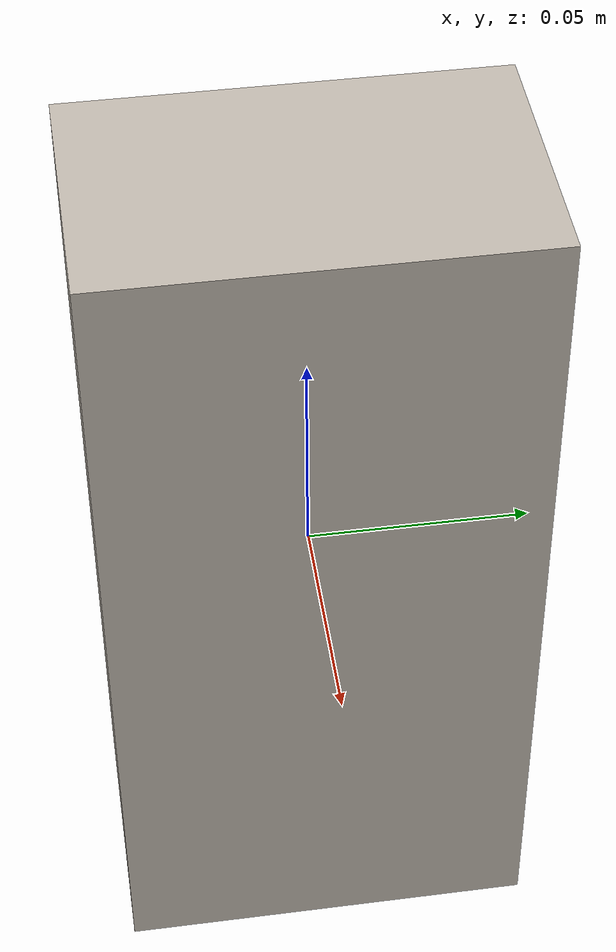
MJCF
<mujoco model="milk_box">
    <compiler angle="radian" meshdir="../meshes/" texturedir="../textures/" autolimits="true" inertiafromgeom="false"/>
    <asset>
        <texture name="milk_box_visual" type="2d" file="milk_box.png" />
        <material name="milk_box_visual" texture="milk_box_visual" />
        <mesh name="MilkBox" file="obj/milk_box.obj" />
    </asset>
    <default>
        <default class="milk_box_visual">
            <geom contype="0" conaffinity="0" />
        </default>
        <default class="milk_box_collision">
            <geom rgba="1.0 0.0 0.0 0.0" />
        </default>
    </default>
    <worldbody>
        <body name="milk_box">
            <freejoint />
            <inertial mass="1.14" pos="0.0 0.0 0.0" quat="-0.7071067690849304 1.1119387632874123e-09 0.7071067690849304 1.1119387632874123e-09" diaginertia="0.001199374906718731 0.004141999874264002 0.004657374694943428"/>
            <geom name="MilkBox" pos="0.0 0.0 0.0" quat="1.0 0.0 0.0 0.0" type="mesh" material="milk_box_visual" mesh="MilkBox" class="milk_box_visual" />
            <geom name="UCX_MilkBox_001" pos="0.0 0.0 0.0" quat="1.0 0.0 0.0 0.0" type="box" size="0.03 0.0475 0.1" class="milk_box_collision" />
        </body>
    </worldbody>
    <equality />
    <contact />
</mujoco>
